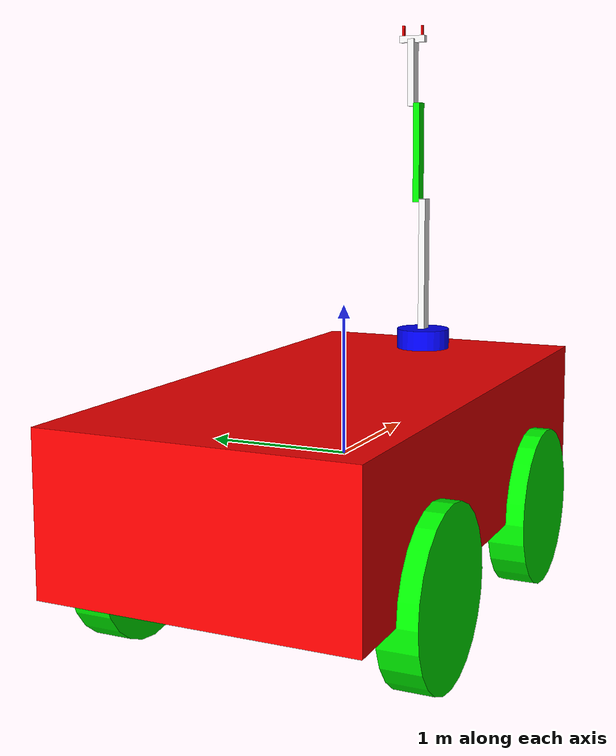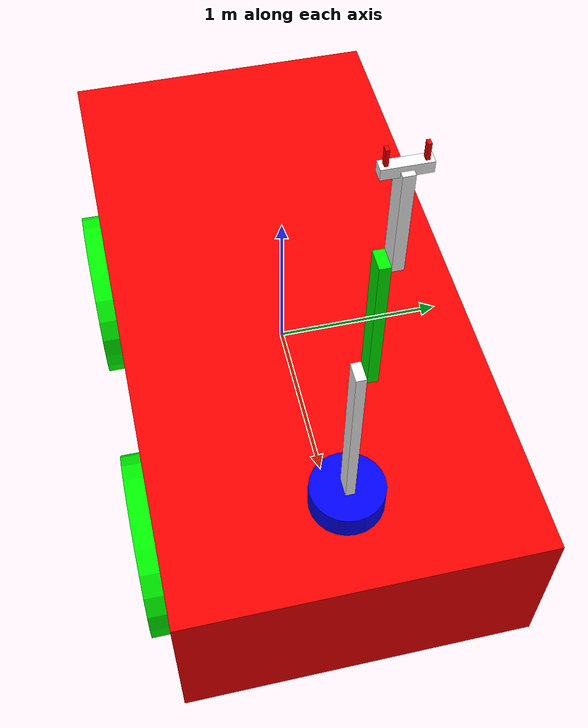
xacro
<?xml version="1.0"?>
<robot xmlns:xacro="http://www.ros.org/wiki/xacro" name="my_bot">

    <xacro:include filename="$(find my_bot)/description/robot.core.xacro"/>
    <xacro:include filename="$(find my_bot)/description/manipulator.xacro"/>

    <xacro:include filename="$(find my_bot)/description/ros2_control.xacro"/>
</robot>

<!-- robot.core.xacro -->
<robot xmlns:xacro="http://www.ros.org/wiki/xacro">

    <xacro:include filename="inertial_macros.xacro"/>
    <material name="red">
        <color rgba="1 0.0 0.0 1.0"/>
    </material>

    <material name="green">
        <color rgba="0.0 1.0 0.0 1.0"/>
    </material>

    <material name="blue">
        <color rgba="0.0 0.0 1.0 1.0"/>
    </material>

    <material name="white">
        <color rgba="1.0 1.0 1.0 1.0"/>
    </material>

    <material name="black">
        <color rgba="0.0 0.0 0.0 1.0"/>
    </material>

    <link name="base_link">
        <visual>
            <origin xyz="0.0 0.0 0.0" rpy="0.0 0.0 0.0"/>
            <geometry>
                <box size="4 2 1"/>
            </geometry>
            <material name="red"/>
        </visual>
        <collision>
            <origin xyz="0.0 0.0 0.0" rpy="0.0 0.0 0.0"/>
            <geometry>
                <box size="4 2 1"/>
            </geometry>
        </collision>
        <xacro:inertial_box mass="40" x="4" y="2" z="1" >
            <origin xyz="0.0 0.0 0.0" rpy="0.0 0.0 0.0"/>
        </xacro:inertial_box>
    </link>
    <gazebo reference="base_link">
        <material>Gazebo/Red</material>
    </gazebo>

<!-- Front Left Wheel -->
    <link name="front_left_wheel_link">
        <visual>
            <origin xyz="0.0 0.0 0.0" rpy="0.0 0.0 0.0"/>
            <geometry>
                <cylinder radius="0.55" length="0.25"/>
            </geometry>
            <material name="green"/>
        </visual>
        <collision>
            <origin xyz="0.0 0.0 0.0" rpy="0.0 0.0 0.0"/>
            <geometry>
                <cylinder radius="0.55" length="0.25"/>
            </geometry>
        </collision>
        <xacro:inertial_cylinder mass="4" radius="0.55" length="0.25">
            <origin xyz="0.0 0.0 0.0" rpy="0.0 0.0 0.0"/>
        </xacro:inertial_cylinder>
    </link>
    <gazebo reference="front_left_wheel_link">
        <material>Gazebo/Green</material>
    </gazebo>

    <joint name="front_left_wheel_joint" type="continuous">
        <origin xyz="1.0 1.0 -0.5" rpy="1.5707 0.0 0.0"/>
        <parent link="base_link"/>
        <child link="front_left_wheel_link"/>
        <axis xyz="0.0 0.0 -1.0"/>
    </joint>

<!-- Front right Wheel -->
    <link name="front_right_wheel_link">
        <visual>
            <origin xyz="0.0 0.0 0.0" rpy="0.0 0.0 0.0"/>
            <geometry>
                <cylinder radius="0.55" length="0.25"/>
            </geometry>
            <material name="green"/>
        </visual>
        <collision>
            <origin xyz="0.0 0.0 0.0" rpy="0.0 0.0 0.0"/>
            <geometry>
                <cylinder radius="0.55" length="0.25"/>
            </geometry>
        </collision>
        <xacro:inertial_cylinder mass="4" radius="0.55" length="0.25">
            <origin xyz="0.0 0.0 0.0" rpy="0.0 0.0 0.0"/>
        </xacro:inertial_cylinder>
    </link>
    <gazebo reference="front_right_wheel_link">
        <material>Gazebo/Green</material>
    </gazebo>

    <joint name="front_right_wheel_joint" type="continuous">
        <origin xyz="1.0 -1.0 -0.5" rpy="-1.5707 0.0 0.0"/>
        <parent link="base_link"/>
        <child link="front_right_wheel_link"/>
        <axis xyz="0.0 0.0 1.0"/>
    </joint>

<!-- Front Left Wheel -->
    <link name="rear_left_wheel_link">
        <visual>
            <origin xyz="0.0 0.0 0.0" rpy="0.0 0.0 0.0"/>
            <geometry>
                <cylinder radius="0.55" length="0.25"/>
            </geometry>
            <material name="green"/>
        </visual>
        <collision>
            <origin xyz="0.0 0.0 0.0" rpy="0.0 0.0 0.0"/>
            <geometry>
                <cylinder radius="0.55" length="0.25"/>
            </geometry>
        </collision>
        <xacro:inertial_cylinder mass="4" radius="0.55" length="0.25">
            <origin xyz="0.0 0.0 0.0" rpy="0.0 0.0 0.0"/>
        </xacro:inertial_cylinder>
    </link>
    <gazebo reference="rear_left_wheel_link">
        <material>Gazebo/Green</material>
    </gazebo>

    <joint name="rear_left_wheel_joint" type="continuous">
        <origin xyz="-1.0 1.0 -0.5" rpy="1.5707 0.0 0.0"/>
        <parent link="base_link"/>
        <child link="rear_left_wheel_link"/>
        <axis xyz="0.0 0.0 -1.0"/>
    </joint>

<!-- Rear right Wheel -->
    <link name="rear_right_wheel_link">
        <visual>
            <origin xyz="0.0 0.0 0.0" rpy="0.0 0.0 0.0"/>
            <geometry>
                <cylinder radius="0.55" length="0.25"/>
            </geometry>
            <material name="green"/>
        </visual>
        <collision>
            <origin xyz="0.0 0.0 0.0" rpy="0.0 0.0 0.0"/>
            <geometry>
                <cylinder radius="0.55" length="0.25"/>
            </geometry>
        </collision>
        <xacro:inertial_cylinder mass="4" radius="0.55" length="0.25">
            <origin xyz="0.0 0.0 0.0" rpy="0.0 0.0 0.0"/>
        </xacro:inertial_cylinder>
    </link>
    <gazebo reference="rear_right_wheel_link">
        <material>Gazebo/Green</material>
    </gazebo>

    <joint name="rear_right_wheel_joint" type="continuous">
        <origin xyz="-1.0 -1.0 -0.5" rpy="-1.5707 0.0 0.0"/>
        <parent link="base_link"/>
        <child link="rear_right_wheel_link"/>
        <axis xyz="0.0 0.0 1.0"/>
    </joint>

</robot>

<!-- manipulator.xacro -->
<robot xmlns:xacro="http://www.ros.org/wiki/xacro">

    <xacro:include filename="$(find my_bot)/description/inertial_macros.xacro"/>

    <link name="mnp_base_link">
        <visual>
            <origin xyz="0.0 0.0 0.075" rpy="0.0 0.0 0.0"/>
            <geometry>
                <cylinder radius="0.2" length="0.15"/>
            </geometry>
            <material name="blue" />
        </visual>
        <collision>
            <origin xyz="0.0 0.0 0.075" rpy="0.0 0.0 0.0"/>
            <geometry>
                <cylinder radius="0.2" length="0.15"/>
            </geometry>
        </collision>
        <xacro:inertial_cylinder mass="2" radius="0.2" length="0.15">
            <origin xyz="0.0 0.0 0.075" rpy="0.0 0.0 0.0"/>
        </xacro:inertial_cylinder>
    </link>
    <gazebo reference="mnp_base_link">
        <material>Gazebo/Blue</material>
    </gazebo>
    <joint name="mnp_base_joint" type="revolute">
        <origin xyz="1.5 0.0 .5" rpy="0.0 0.0 0.0"/>
        <parent link="base_link"/>
        <child link="mnp_base_link"/>
        <axis xyz="0.0 0.0 1.0"/>
        <limit lower="0" upper="0" effort="0.0" velocity="0.0"/>
    </joint>

<!-- First Link -->
    <link name="mnp_first_link">
        <visual>
            <origin xyz="0.0 0.0 0.5" rpy="0.0 0.0 0.0"/>
            <geometry>
                <box size="0.1 0.05 1"/>
            </geometry>
            <material name="white" />
        </visual>
        <collision>
            <origin xyz="0.0 0.0 0.5" rpy="0.0 0.0 0.0"/>
            <geometry>
                <box size="0.1 0.05 1"/>
            </geometry>
        </collision>
        <xacro:inertial_box mass="2" x="0.1" y="0.05" z="1" >
            <origin xyz="0.0 0.0 0.5" rpy="0.0 0.0 0.0"/>
        </xacro:inertial_box>
    </link>
    <gazebo reference="mnp_first_link">
        <material>Gazebo/Grey</material>
    </gazebo>
    <joint name="mnp_first_joint" type="continuous">
        <origin xyz="0 0.0 0.15" rpy="0.0 0.0 0.0"/>
        <parent link="mnp_base_link"/>
        <child link="mnp_first_link"/>
        <axis xyz="0.0 1.0 0.0"/>
        <limit lower="-1.57" upper="1.57" effort="5" velocity="0.5"/>
        <dynamics damping="0.7"/>
    </joint>
<!-- Second Link -->
    <link name="mnp_second_link">
        <visual>
            <origin xyz="0.0 0.0 0.35" rpy="0.0 0.0 0.0"/>
            <geometry>
                <box size="0.1 0.05 0.75"/>
            </geometry>
            <material name="green" />
        </visual>
        <collision>
            <origin xyz="0.0 0.0 0.35" rpy="0.0 0.0 0.0"/>
            <geometry>
                <box size="0.1 0.05 0.75"/>
            </geometry>
        </collision>
        <xacro:inertial_box mass="1" x="0.1" y="0.05" z="0.75" >
            <origin xyz="0.0 0.0 0.35" rpy="0.0 0.0 0.0"/>
        </xacro:inertial_box>
    </link>
    <gazebo reference="mnp_second_link">
        <material>Gazebo/White</material>
    </gazebo>
    <joint name="mnp_second_joint" type="continuous">
        <origin xyz="0 0.05 1" rpy="0.0 0.0 0.0"/>
        <parent link="mnp_first_link"/>
        <child link="mnp_second_link"/>
        <axis xyz="0.0 1.0 0.0"/>
        <limit lower="-1.57" upper="1.57" effort="5" velocity="0.5"/>
        <dynamics damping="0.7"/>
    </joint>

    <!-- Third Link -->
    <link name="mnp_third_link">
        <visual>
            <origin xyz="0.0 0.0 0.2" rpy="0.0 0.0 0.0"/>
            <geometry>
                <box size="0.1 0.05 0.5"/>
            </geometry>
            <material name="white" />
        </visual>
        <collision>
            <origin xyz="0.0 0.0 0.2" rpy="0.0 0.0 0.0"/>
            <geometry>
                <box size="0.1 0.05 0.5"/>
            </geometry>
        </collision>
        <xacro:inertial_box mass="0.5" x="0.1" y="0.05" z="0.5" >
            <origin xyz="0.0 0.0 0.2" rpy="0.0 0.0 0.0"/>
        </xacro:inertial_box>
    </link>
    <gazebo reference="mnp_third_link">
        <material>Gazebo/Black</material>
    </gazebo>
    <joint name="mnp_third_joint" type="continuous">
        <origin xyz="0 0.05 .75" rpy="0.0 0.0 0.0"/>
        <parent link="mnp_second_link"/>
        <child link="mnp_third_link"/>
        <axis xyz="0.0 1.0 0.0"/>
        <limit lower="-1.5707" upper="1.5707" effort="5" velocity="0.5"/>
        <dynamics damping="0.7"/>
    </joint>

    <!-- End Effector -->
    <link name="mnp_ee_base_link">
        <visual>
            <origin xyz="0.0 0 0.0" rpy="0.0 0.0 0.0"/>
            <geometry>
                <box size="0.05 0.2 0.05"/>
            </geometry>
            <material name="white" />
        </visual>
        <collision>
            <origin xyz="0.0 0 0.0" rpy="0.0 0.0 0.0"/>
            <geometry>
                <box size="0.05 0.2 0.05"/>
            </geometry>
        </collision>
        <xacro:inertial_box mass="0.15" x="0.05" y="0.2" z="0.05" >
            <origin xyz="0.0 0 0.0" rpy="0.0 0.0 0.0"/>
        </xacro:inertial_box>
    </link>
    <gazebo reference="mnp_ee_base_link">
        <material>Gazebo/Blue</material>
    </gazebo>
    <joint name="mnp_ee_base_joint" type="fixed">
        <origin xyz="0 0.0 .45" rpy="0.0 0 0.0"/>
        <parent link="mnp_third_link"/>
        <child link="mnp_ee_base_link"/>
        <axis xyz="0.0 1.0 0.0"/>
    </joint>

<!-- left_gripper_hand -->
    <link name="mnp_left_gripper_link">
        <visual>
            <origin xyz="0.0 0 0.0" rpy="0.0 0.0 0.0"/>
            <geometry>
                <box size="0.025 0.015 0.1"/>
            </geometry>
            <material name="red" />
        </visual>
        <collision>
            <origin xyz="0.0 0 0.0" rpy="0.0 0.0 0.0"/>
            <geometry>
                <box size="0.025 0.015 0.1"/>
            </geometry>
        </collision>
        <xacro:inertial_box mass="0.05" x="0.025" y="0.015" z="0.1" >
            <origin xyz="0.0 0 0.0" rpy="0.0 0.0 0.0"/>
        </xacro:inertial_box>
    </link>
    <gazebo reference="mnp_left_gripper_link">
        <material>Gazebo/Green</material>
    </gazebo>
    <joint name="mnp_left_gripper_joint" type="prismatic">
        <origin xyz="0 -0.075 0.05" rpy="0.0 0.0 0.0"/>
        <parent link="mnp_ee_base_link"/>
        <child link="mnp_left_gripper_link"/>
        <axis xyz="0.0 1.0 0.0"/>
        <limit lower="0" upper="0.0" effort="0.0" velocity="0.0"/>
    </joint>

<!-- right_gripper_hand -->
    <link name="mnp_right_gripper_link">
        <visual>
            <origin xyz="0.0 0 0.0" rpy="0.0 0.0 0.0"/>
            <geometry>
                <box size="0.025 0.015 0.1"/>
            </geometry>
            <material name="red" />
        </visual>
        <collision>
            <origin xyz="0.0 0 0.0" rpy="0.0 0.0 0.0"/>
            <geometry>
                <box size="0.025 0.015 0.1"/>
            </geometry>
        </collision>
        <xacro:inertial_box mass="0.05" x="0.025" y="0.015" z="0.1" >
            <origin xyz="0.0 0 0.0" rpy="0.0 0.0 0.0"/>
        </xacro:inertial_box>
    </link>
    <gazebo reference="mnp_right_gripper_link">
        <material>Gazebo/Green</material>
    </gazebo>
    <joint name="mnp_right_gripper_joint" type="prismatic">
        <origin xyz="0 0.075 .05" rpy="0.0 0.0 0.0"/>
        <parent link="mnp_ee_base_link"/>
        <child link="mnp_right_gripper_link"/>
        <axis xyz="0.0 1.0 0.0"/>
        <limit lower="0" upper="0.0" effort="0.0" velocity="0.0"/>
    </joint>

</robot>
